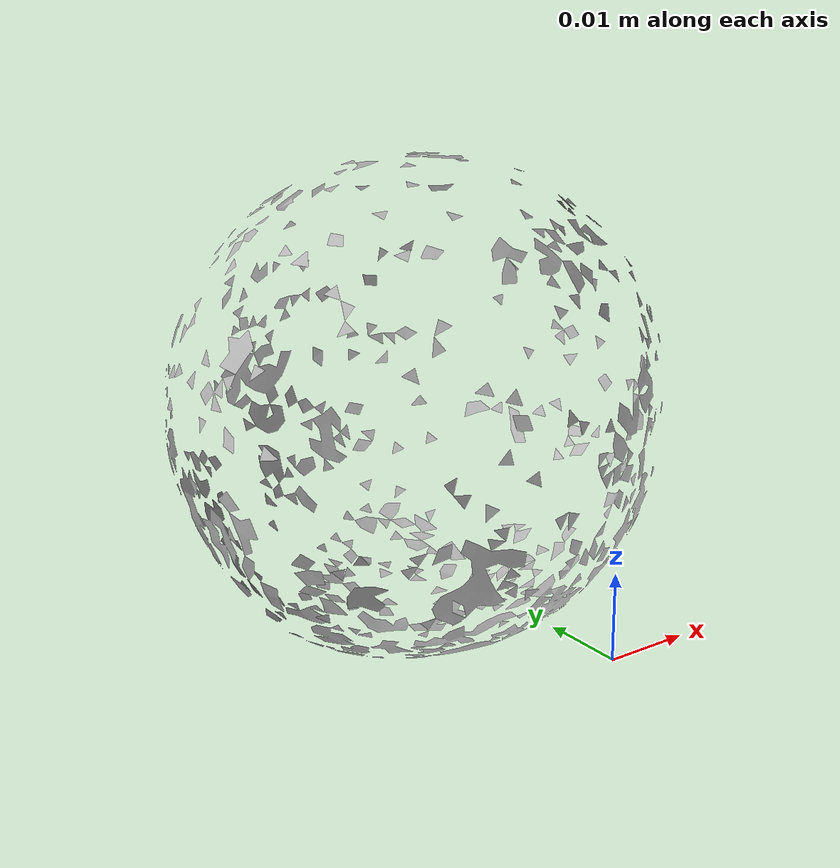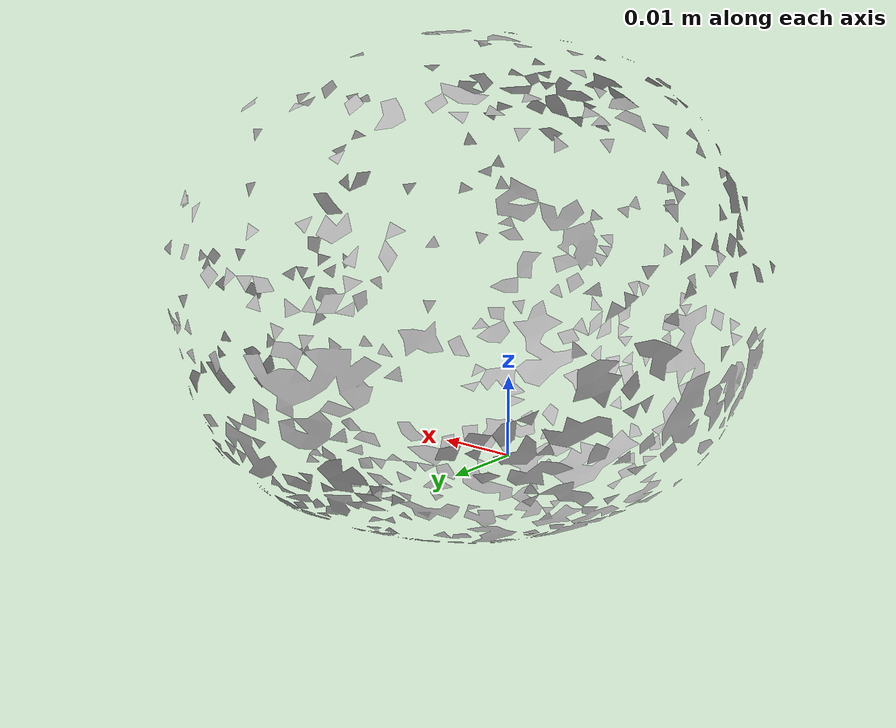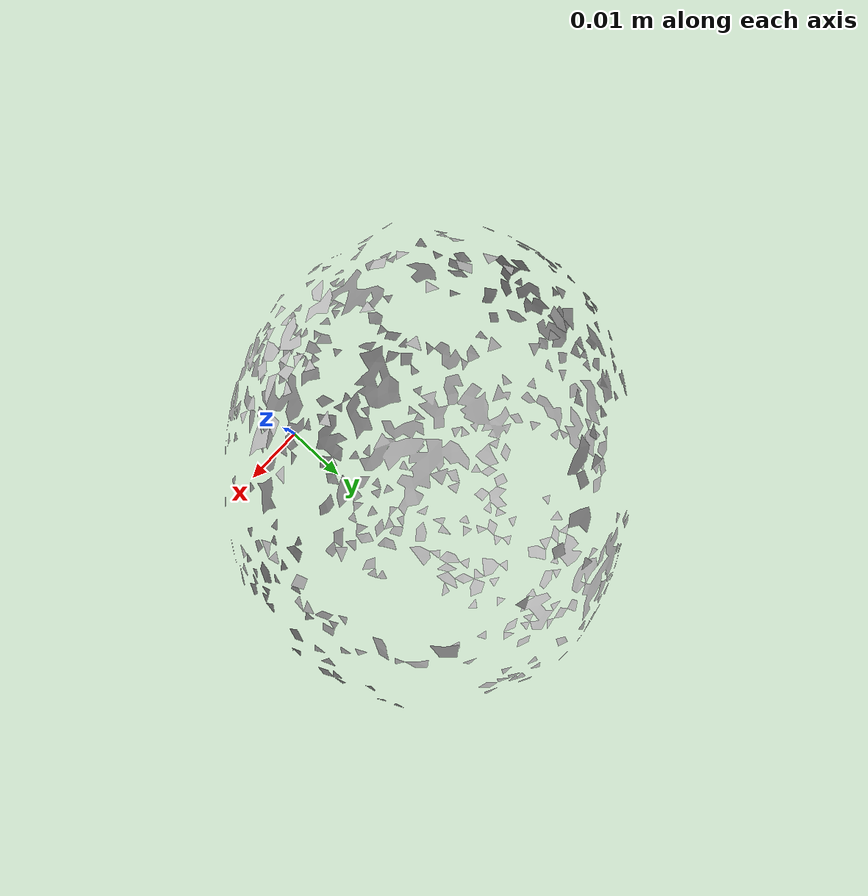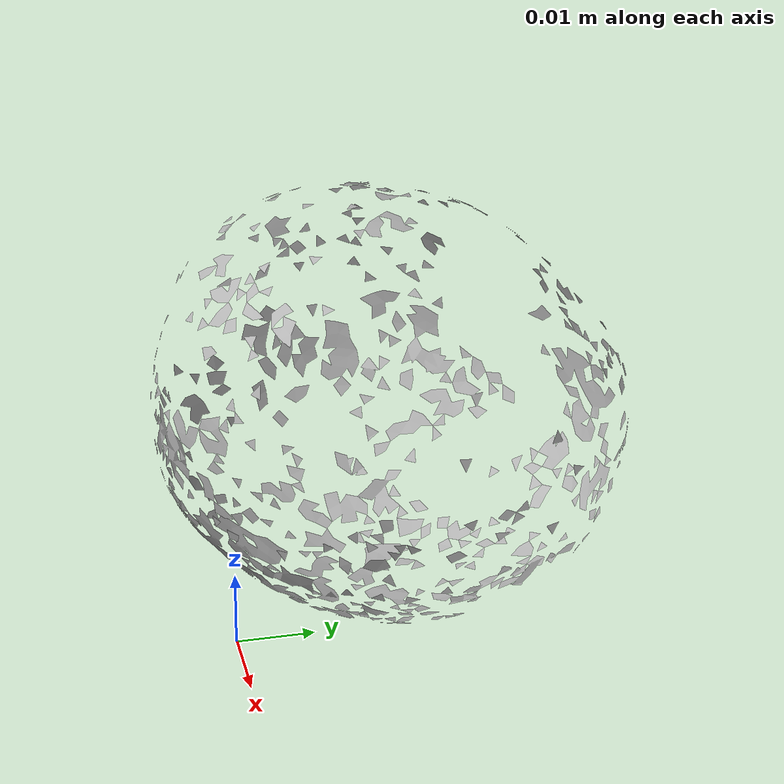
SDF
<?xml version="1.0" ?>
<sdf version="1.4">
  <model name='ycb_014_lemon'>
    <link name='body'>
      <inertial>
        <mass>0.029</mass>
        <pose>-0.0107704930173 0.0210142182139 0.0262085335818 0 0 0</pose>
        <inertia>
          <ixx>9.11673974512e-06</ixx>
          <ixy>-9.15011808197e-07</ixy>
          <ixz>3.26771698102e-08</ixz>
          <iyy>9.42536226648e-06</iyy>
          <iyz>-3.43071613315e-09</iyz>
          <izz>1.01790782739e-05</izz>
        </inertia>
      </inertial>
      <visual name='ycb_014_lemon_visual'>
        <pose>0 0 0 0 0 0</pose>
        <geometry>
          <mesh>
            <uri>model://ycb_014_lemon/meshes/textured.dae</uri>
          </mesh>
        </geometry>
      </visual>
      <collision name='ycb_014_lemon_collision'>
        <pose>0 0 0 0 0 0</pose>
        <geometry>
          <mesh>
            <uri>model://ycb_014_lemon/meshes/nontextured.stl</uri>
          </mesh>
        </geometry>
        <max_contacts>10</max_contacts>
      </collision>
    </link>
  </model>
</sdf>
